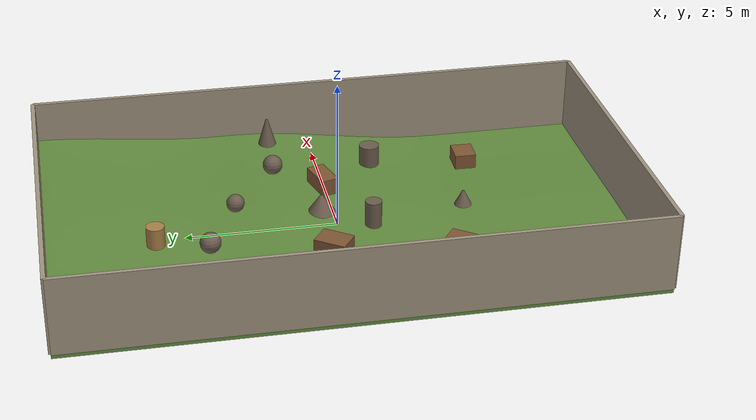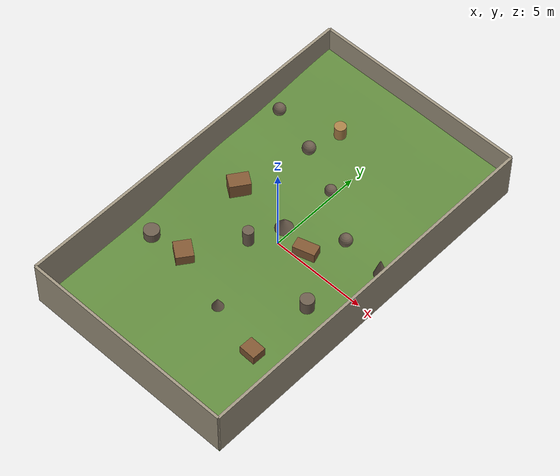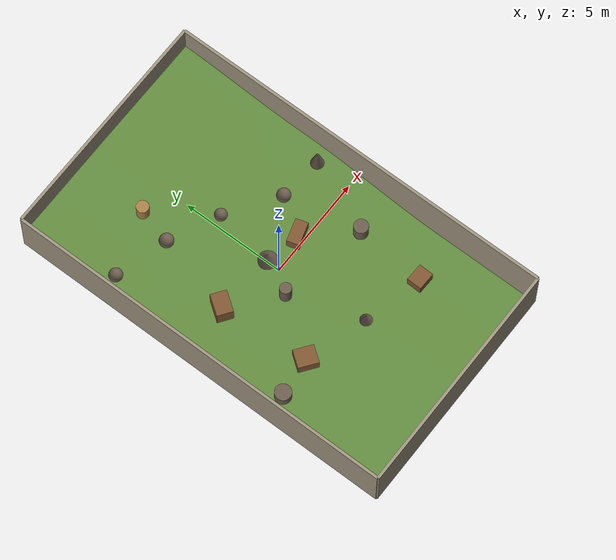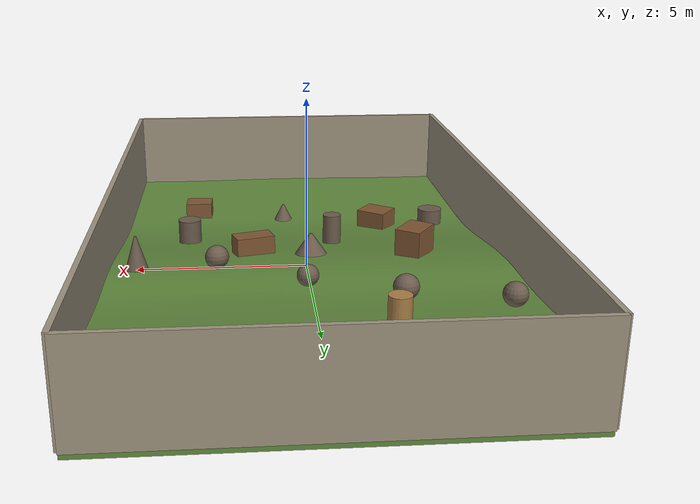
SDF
<?xml version='1.0' encoding='utf-8'?>
<sdf version="1.7">
  <world name="terrain_5">
    <gravity>0 0 -9.8</gravity>
    <plugin name="gazebo_ros_state" filename="libgazebo_ros_state.so">
      <ros>
        <namespace>/gazebo</namespace>
      </ros>
    </plugin>
    <physics name="ode_physics" type="ode">
      <max_step_size>0.001</max_step_size>
      <real_time_factor>1</real_time_factor>
      <real_time_update_rate>1000</real_time_update_rate>
      <ode>
        <solver>
          <type>quick</type>
          <iters>150</iters>
          <sor>1.3</sor>
        </solver>
        <constraints>
          <cfm>0</cfm>
          <erp>0.2</erp>
          <contact_max_correcting_vel>0.2</contact_max_correcting_vel>
          <contact_surface_layer>0.001</contact_surface_layer>
        </constraints>
      </ode>
    </physics>
    <light name="sun" type="directional">
      <pose>0 0 42 0 0 0</pose>
      <diffuse>0.92 0.91 0.88 1</diffuse>
      <specular>0.18 0.18 0.16 1</specular>
      <direction>-0.35 -0.28 -0.9</direction>
      <cast_shadows>true</cast_shadows>
    </light>
    <light name="fill" type="point">
      <pose>0 0 6 0 0 0</pose>
      <diffuse>0.35 0.36 0.34 1</diffuse>
      <specular>0.02 0.02 0.02 1</specular>
      <cast_shadows>false</cast_shadows>
      <attenuation>
        <range>80</range>
        <constant>0.5</constant>
        <linear>0.02</linear>
      </attenuation>
    </light>
    <scene>
      <ambient>0.52 0.56 0.48 1</ambient>
      <background>0.58 0.76 0.92 1</background>
    </scene>
    <gui fullscreen="false">
      <camera name="user_camera">
        <pose>7.85909091 -17.1 16.15 0 0.65 2.2</pose>
        <view_controller>orbit</view_controller>
      </camera>
    </gui>
    <model name="terrain_5_structure">
      <static>true</static>
      <link name="structure">
        <collision name="ground_surface_collision">
          <pose>0 0 0 0 0 0</pose>
          <geometry>
            <mesh>
              <uri>3DModel/terrain/surfaces/terrain_5_ground_surface.stl</uri>
            </mesh>
          </geometry>
          <max_contacts>40</max_contacts>
          <surface>
            <friction>
              <ode>
                <mu>8</mu>
                <mu2>8</mu2>
              </ode>
            </friction>
            <contact>
              <ode>
                <kp>1e7</kp>
                <kd>1000</kd>
                <max_vel>0.1</max_vel>
                <min_depth>0.001</min_depth>
              </ode>
            </contact>
          </surface>
        </collision>
        <visual name="ground_surface_visual">
          <pose>0 0 0 0 0 0</pose>
          <geometry>
            <mesh>
              <uri>3DModel/terrain/surfaces/terrain_5_ground_surface.stl</uri>
            </mesh>
          </geometry>
          <material>
            <ambient>0.38 0.54 0.24 1</ambient>
            <diffuse>0.38 0.54 0.24 1</diffuse>
          </material>
        </visual>
        <collision name="rock_box_0_collision">
          <pose>-2.59090909 -3.45454545 0.320454055 0 0 -0.631996004</pose>
          <geometry>
            <box>
              <size>0.95 0.863636364 0.561363636</size>
            </box>
          </geometry>
          <max_contacts>40</max_contacts>
          <surface>
            <friction>
              <ode>
                <mu>2</mu>
                <mu2>2</mu2>
              </ode>
            </friction>
            <contact>
              <ode>
                <kp>1e7</kp>
                <kd>1000</kd>
                <max_vel>0.1</max_vel>
                <min_depth>0.001</min_depth>
              </ode>
            </contact>
          </surface>
        </collision>
        <visual name="rock_box_0_visual">
          <pose>-2.59090909 -3.45454545 0.320454055 0 0 -0.631996004</pose>
          <geometry>
            <box>
              <size>0.95 0.863636364 0.561363636</size>
            </box>
          </geometry>
          <material>
            <ambient>0.50 0.34 0.20 1</ambient>
            <diffuse>0.50 0.34 0.20 1</diffuse>
          </material>
        </visual>
        <collision name="rock_round_1_collision">
          <pose>2.59090909 1.72727273 0.999488146 0 0 0</pose>
          <geometry>
            <sphere>
              <radius>0.3281818181818182</radius>
            </sphere>
          </geometry>
          <max_contacts>40</max_contacts>
          <surface>
            <friction>
              <ode>
                <mu>2</mu>
                <mu2>2</mu2>
              </ode>
            </friction>
            <contact>
              <ode>
                <kp>1e7</kp>
                <kd>1000</kd>
                <max_vel>0.1</max_vel>
                <min_depth>0.001</min_depth>
              </ode>
            </contact>
          </surface>
        </collision>
        <visual name="rock_round_1_visual">
          <pose>2.59090909 1.72727273 0.999488146 0 0 0</pose>
          <geometry>
            <sphere>
              <radius>0.3281818181818182</radius>
            </sphere>
          </geometry>
          <material>
            <ambient>0.42 0.36 0.30 1</ambient>
            <diffuse>0.42 0.36 0.30 1</diffuse>
          </material>
        </visual>
        <collision name="stone_column_2_collision">
          <pose>-1.72727273 6.04545455 1.22765715 0 0 0</pose>
          <geometry>
            <cylinder>
              <radius>0.29363636363636364</radius>
              <length>0.6909090909090909</length>
            </cylinder>
          </geometry>
          <max_contacts>40</max_contacts>
          <surface>
            <friction>
              <ode>
                <mu>2</mu>
                <mu2>2</mu2>
              </ode>
            </friction>
            <contact>
              <ode>
                <kp>1e7</kp>
                <kd>1000</kd>
                <max_vel>0.1</max_vel>
                <min_depth>0.001</min_depth>
              </ode>
            </contact>
          </surface>
        </collision>
        <visual name="stone_column_2_visual">
          <pose>-1.72727273 6.04545455 1.22765715 0 0 0</pose>
          <geometry>
            <cylinder>
              <radius>0.29363636363636364</radius>
              <length>0.6909090909090909</length>
            </cylinder>
          </geometry>
          <material>
            <ambient>0.66 0.50 0.28 1</ambient>
            <diffuse>0.66 0.50 0.28 1</diffuse>
          </material>
        </visual>
        <collision name="boundary_0_collision">
          <pose>0 -9.5 1.20909091 0 0 0</pose>
          <geometry>
            <box>
              <size>11.2272727 0.138181818 2.59090909</size>
            </box>
          </geometry>
          <max_contacts>40</max_contacts>
          <surface>
            <friction>
              <ode>
                <mu>2</mu>
                <mu2>2</mu2>
              </ode>
            </friction>
            <contact>
              <ode>
                <kp>1e7</kp>
                <kd>1000</kd>
                <max_vel>0.1</max_vel>
                <min_depth>0.001</min_depth>
              </ode>
            </contact>
          </surface>
        </collision>
        <visual name="boundary_0_visual">
          <pose>0 -9.5 1.20909091 0 0 0</pose>
          <geometry>
            <box>
              <size>11.2272727 0.138181818 2.59090909</size>
            </box>
          </geometry>
          <material>
            <ambient>0.62 0.58 0.50 1</ambient>
            <diffuse>0.62 0.58 0.50 1</diffuse>
          </material>
        </visual>
        <collision name="boundary_1_collision">
          <pose>5.61363636 0 1.20909091 0 0 1.57079633</pose>
          <geometry>
            <box>
              <size>19 0.138181818 2.59090909</size>
            </box>
          </geometry>
          <max_contacts>40</max_contacts>
          <surface>
            <friction>
              <ode>
                <mu>2</mu>
                <mu2>2</mu2>
              </ode>
            </friction>
            <contact>
              <ode>
                <kp>1e7</kp>
                <kd>1000</kd>
                <max_vel>0.1</max_vel>
                <min_depth>0.001</min_depth>
              </ode>
            </contact>
          </surface>
        </collision>
        <visual name="boundary_1_visual">
          <pose>5.61363636 0 1.20909091 0 0 1.57079633</pose>
          <geometry>
            <box>
              <size>19 0.138181818 2.59090909</size>
            </box>
          </geometry>
          <material>
            <ambient>0.62 0.58 0.50 1</ambient>
            <diffuse>0.62 0.58 0.50 1</diffuse>
          </material>
        </visual>
        <collision name="boundary_2_collision">
          <pose>0 9.5 1.20909091 0 0 3.14159265</pose>
          <geometry>
            <box>
              <size>11.2272727 0.138181818 2.59090909</size>
            </box>
          </geometry>
          <max_contacts>40</max_contacts>
          <surface>
            <friction>
              <ode>
                <mu>2</mu>
                <mu2>2</mu2>
              </ode>
            </friction>
            <contact>
              <ode>
                <kp>1e7</kp>
                <kd>1000</kd>
                <max_vel>0.1</max_vel>
                <min_depth>0.001</min_depth>
              </ode>
            </contact>
          </surface>
        </collision>
        <visual name="boundary_2_visual">
          <pose>0 9.5 1.20909091 0 0 3.14159265</pose>
          <geometry>
            <box>
              <size>11.2272727 0.138181818 2.59090909</size>
            </box>
          </geometry>
          <material>
            <ambient>0.62 0.58 0.50 1</ambient>
            <diffuse>0.62 0.58 0.50 1</diffuse>
          </material>
        </visual>
        <collision name="boundary_3_collision">
          <pose>-5.61363636 0 1.20909091 0 0 -1.57079633</pose>
          <geometry>
            <box>
              <size>19 0.138181818 2.59090909</size>
            </box>
          </geometry>
          <max_contacts>40</max_contacts>
          <surface>
            <friction>
              <ode>
                <mu>2</mu>
                <mu2>2</mu2>
              </ode>
            </friction>
            <contact>
              <ode>
                <kp>1e7</kp>
                <kd>1000</kd>
                <max_vel>0.1</max_vel>
                <min_depth>0.001</min_depth>
              </ode>
            </contact>
          </surface>
        </collision>
        <visual name="boundary_3_visual">
          <pose>-5.61363636 0 1.20909091 0 0 -1.57079633</pose>
          <geometry>
            <box>
              <size>19 0.138181818 2.59090909</size>
            </box>
          </geometry>
          <material>
            <ambient>0.62 0.58 0.50 1</ambient>
            <diffuse>0.62 0.58 0.50 1</diffuse>
          </material>
        </visual>
        <collision name="irregular_prop_0_collision">
          <pose>3.31784742 -5.09100339 0.254894919 0 0 -0.0281153594</pose>
          <geometry>
            <box>
              <size>0.855450702 0.719508024 0.504131895</size>
            </box>
          </geometry>
          <max_contacts>40</max_contacts>
          <surface>
            <friction>
              <ode>
                <mu>2</mu>
                <mu2>2</mu2>
              </ode>
            </friction>
            <contact>
              <ode>
                <kp>1e7</kp>
                <kd>1000</kd>
                <max_vel>0.1</max_vel>
                <min_depth>0.001</min_depth>
              </ode>
            </contact>
          </surface>
        </collision>
        <visual name="irregular_prop_0_visual">
          <pose>3.31784742 -5.09100339 0.254894919 0 0 -0.0281153594</pose>
          <geometry>
            <box>
              <size>0.855450702 0.719508024 0.504131895</size>
            </box>
          </geometry>
          <material>
            <ambient>0.50 0.34 0.20 1</ambient>
            <diffuse>0.50 0.34 0.20 1</diffuse>
          </material>
        </visual>
        <collision name="irregular_prop_1_collision">
          <pose>-4.43932031 -3.65621903 0.26971204 0 0 -1.24544425</pose>
          <geometry>
            <cylinder>
              <radius>0.3866845132374268</radius>
              <length>0.502405011112344</length>
            </cylinder>
          </geometry>
          <max_contacts>40</max_contacts>
          <surface>
            <friction>
              <ode>
                <mu>2</mu>
                <mu2>2</mu2>
              </ode>
            </friction>
            <contact>
              <ode>
                <kp>1e7</kp>
                <kd>1000</kd>
                <max_vel>0.1</max_vel>
                <min_depth>0.001</min_depth>
              </ode>
            </contact>
          </surface>
        </collision>
        <visual name="irregular_prop_1_visual">
          <pose>-4.43932031 -3.65621903 0.26971204 0 0 -1.24544425</pose>
          <geometry>
            <cylinder>
              <radius>0.3866845132374268</radius>
              <length>0.502405011112344</length>
            </cylinder>
          </geometry>
          <material>
            <ambient>0.42 0.36 0.30 1</ambient>
            <diffuse>0.42 0.36 0.30 1</diffuse>
          </material>
        </visual>
        <collision name="irregular_prop_2_collision">
          <pose>-4.75307056 5.11751377 1.09333152 0 0 1.75404163</pose>
          <geometry>
            <sphere>
              <radius>0.3200271670287471</radius>
            </sphere>
          </geometry>
          <max_contacts>40</max_contacts>
          <surface>
            <friction>
              <ode>
                <mu>2</mu>
                <mu2>2</mu2>
              </ode>
            </friction>
            <contact>
              <ode>
                <kp>1e7</kp>
                <kd>1000</kd>
                <max_vel>0.1</max_vel>
                <min_depth>0.001</min_depth>
              </ode>
            </contact>
          </surface>
        </collision>
        <visual name="irregular_prop_2_visual">
          <pose>-4.75307056 5.11751377 1.09333152 0 0 1.75404163</pose>
          <geometry>
            <sphere>
              <radius>0.3200271670287471</radius>
            </sphere>
          </geometry>
          <material>
            <ambient>0.42 0.36 0.30 1</ambient>
            <diffuse>0.42 0.36 0.30 1</diffuse>
          </material>
        </visual>
        <collision name="irregular_prop_3_collision">
          <pose>0 0 0 0 0 0</pose>
          <geometry>
            <mesh>
              <uri>3DModel/terrain/surfaces/terrain_5_irregular_prop_3.stl</uri>
            </mesh>
          </geometry>
          <max_contacts>40</max_contacts>
          <surface>
            <friction>
              <ode>
                <mu>8</mu>
                <mu2>8</mu2>
              </ode>
            </friction>
            <contact>
              <ode>
                <kp>1e7</kp>
                <kd>1000</kd>
                <max_vel>0.1</max_vel>
                <min_depth>0.001</min_depth>
              </ode>
            </contact>
          </surface>
        </collision>
        <visual name="irregular_prop_3_visual">
          <pose>0 0 0 0 0 0</pose>
          <geometry>
            <mesh>
              <uri>3DModel/terrain/surfaces/terrain_5_irregular_prop_3.stl</uri>
            </mesh>
          </geometry>
          <material>
            <ambient>0.42 0.36 0.30 1</ambient>
            <diffuse>0.42 0.36 0.30 1</diffuse>
          </material>
        </visual>
        <collision name="irregular_prop_4_collision">
          <pose>-3.08827845 0.674826788 0.97080944 0 0 0.957080702</pose>
          <geometry>
            <box>
              <size>1.04078612 0.754331411 0.810233455</size>
            </box>
          </geometry>
          <max_contacts>40</max_contacts>
          <surface>
            <friction>
              <ode>
                <mu>2</mu>
                <mu2>2</mu2>
              </ode>
            </friction>
            <contact>
              <ode>
                <kp>1e7</kp>
                <kd>1000</kd>
                <max_vel>0.1</max_vel>
                <min_depth>0.001</min_depth>
              </ode>
            </contact>
          </surface>
        </collision>
        <visual name="irregular_prop_4_visual">
          <pose>-3.08827845 0.674826788 0.97080944 0 0 0.957080702</pose>
          <geometry>
            <box>
              <size>1.04078612 0.754331411 0.810233455</size>
            </box>
          </geometry>
          <material>
            <ambient>0.50 0.34 0.20 1</ambient>
            <diffuse>0.50 0.34 0.20 1</diffuse>
          </material>
        </visual>
        <collision name="irregular_prop_5_collision">
          <pose>-0.854684285 -1.02676866 0.796647835 0 0 2.1626254</pose>
          <geometry>
            <cylinder>
              <radius>0.2707444216075025</radius>
              <length>0.8894486341126021</length>
            </cylinder>
          </geometry>
          <max_contacts>40</max_contacts>
          <surface>
            <friction>
              <ode>
                <mu>2</mu>
                <mu2>2</mu2>
              </ode>
            </friction>
            <contact>
              <ode>
                <kp>1e7</kp>
                <kd>1000</kd>
                <max_vel>0.1</max_vel>
                <min_depth>0.001</min_depth>
              </ode>
            </contact>
          </surface>
        </collision>
        <visual name="irregular_prop_5_visual">
          <pose>-0.854684285 -1.02676866 0.796647835 0 0 2.1626254</pose>
          <geometry>
            <cylinder>
              <radius>0.2707444216075025</radius>
              <length>0.8894486341126021</length>
            </cylinder>
          </geometry>
          <material>
            <ambient>0.42 0.36 0.30 1</ambient>
            <diffuse>0.42 0.36 0.30 1</diffuse>
          </material>
        </visual>
        <collision name="irregular_prop_6_collision">
          <pose>0.209128949 3.30444445 1.01863765 0 0 2.27568676</pose>
          <geometry>
            <sphere>
              <radius>0.29340768088374397</radius>
            </sphere>
          </geometry>
          <max_contacts>40</max_contacts>
          <surface>
            <friction>
              <ode>
                <mu>2</mu>
                <mu2>2</mu2>
              </ode>
            </friction>
            <contact>
              <ode>
                <kp>1e7</kp>
                <kd>1000</kd>
                <max_vel>0.1</max_vel>
                <min_depth>0.001</min_depth>
              </ode>
            </contact>
          </surface>
        </collision>
        <visual name="irregular_prop_6_visual">
          <pose>0.209128949 3.30444445 1.01863765 0 0 2.27568676</pose>
          <geometry>
            <sphere>
              <radius>0.29340768088374397</radius>
            </sphere>
          </geometry>
          <material>
            <ambient>0.42 0.36 0.30 1</ambient>
            <diffuse>0.42 0.36 0.30 1</diffuse>
          </material>
        </visual>
        <collision name="irregular_prop_7_collision">
          <pose>0 0 0 0 0 0</pose>
          <geometry>
            <mesh>
              <uri>3DModel/terrain/surfaces/terrain_5_irregular_prop_7.stl</uri>
            </mesh>
          </geometry>
          <max_contacts>40</max_contacts>
          <surface>
            <friction>
              <ode>
                <mu>8</mu>
                <mu2>8</mu2>
              </ode>
            </friction>
            <contact>
              <ode>
                <kp>1e7</kp>
                <kd>1000</kd>
                <max_vel>0.1</max_vel>
                <min_depth>0.001</min_depth>
              </ode>
            </contact>
          </surface>
        </collision>
        <visual name="irregular_prop_7_visual">
          <pose>0 0 0 0 0 0</pose>
          <geometry>
            <mesh>
              <uri>3DModel/terrain/surfaces/terrain_5_irregular_prop_7.stl</uri>
            </mesh>
          </geometry>
          <material>
            <ambient>0.42 0.36 0.30 1</ambient>
            <diffuse>0.42 0.36 0.30 1</diffuse>
          </material>
        </visual>
        <collision name="irregular_prop_8_collision">
          <pose>1.56990411 0.201517358 0.800115635 0 0 -2.85089803</pose>
          <geometry>
            <box>
              <size>1.12453357 0.600436119 0.553221796</size>
            </box>
          </geometry>
          <max_contacts>40</max_contacts>
          <surface>
            <friction>
              <ode>
                <mu>2</mu>
                <mu2>2</mu2>
              </ode>
            </friction>
            <contact>
              <ode>
                <kp>1e7</kp>
                <kd>1000</kd>
                <max_vel>0.1</max_vel>
                <min_depth>0.001</min_depth>
              </ode>
            </contact>
          </surface>
        </collision>
        <visual name="irregular_prop_8_visual">
          <pose>1.56990411 0.201517358 0.800115635 0 0 -2.85089803</pose>
          <geometry>
            <box>
              <size>1.12453357 0.600436119 0.553221796</size>
            </box>
          </geometry>
          <material>
            <ambient>0.50 0.34 0.20 1</ambient>
            <diffuse>0.50 0.34 0.20 1</diffuse>
          </material>
        </visual>
        <collision name="irregular_prop_9_collision">
          <pose>3.49230787 -1.77262911 0.578534949 0 0 0.26003611</pose>
          <geometry>
            <cylinder>
              <radius>0.3405038640853353</radius>
              <length>0.7291891188141353</length>
            </cylinder>
          </geometry>
          <max_contacts>40</max_contacts>
          <surface>
            <friction>
              <ode>
                <mu>2</mu>
                <mu2>2</mu2>
              </ode>
            </friction>
            <contact>
              <ode>
                <kp>1e7</kp>
                <kd>1000</kd>
                <max_vel>0.1</max_vel>
                <min_depth>0.001</min_depth>
              </ode>
            </contact>
          </surface>
        </collision>
        <visual name="irregular_prop_9_visual">
          <pose>3.49230787 -1.77262911 0.578534949 0 0 0.26003611</pose>
          <geometry>
            <cylinder>
              <radius>0.3405038640853353</radius>
              <length>0.7291891188141353</length>
            </cylinder>
          </geometry>
          <material>
            <ambient>0.42 0.36 0.30 1</ambient>
            <diffuse>0.42 0.36 0.30 1</diffuse>
          </material>
        </visual>
        <collision name="irregular_prop_10_collision">
          <pose>-2.17785946 4.39533775 1.07071471 0 0 1.35541762</pose>
          <geometry>
            <sphere>
              <radius>0.33631733524237695</radius>
            </sphere>
          </geometry>
          <max_contacts>40</max_contacts>
          <surface>
            <friction>
              <ode>
                <mu>2</mu>
                <mu2>2</mu2>
              </ode>
            </friction>
            <contact>
              <ode>
                <kp>1e7</kp>
                <kd>1000</kd>
                <max_vel>0.1</max_vel>
                <min_depth>0.001</min_depth>
              </ode>
            </contact>
          </surface>
        </collision>
        <visual name="irregular_prop_10_visual">
          <pose>-2.17785946 4.39533775 1.07071471 0 0 1.35541762</pose>
          <geometry>
            <sphere>
              <radius>0.33631733524237695</radius>
            </sphere>
          </geometry>
          <material>
            <ambient>0.42 0.36 0.30 1</ambient>
            <diffuse>0.42 0.36 0.30 1</diffuse>
          </material>
        </visual>
        <collision name="irregular_prop_11_collision">
          <pose>0 0 0 0 0 0</pose>
          <geometry>
            <mesh>
              <uri>3DModel/terrain/surfaces/terrain_5_irregular_prop_11.stl</uri>
            </mesh>
          </geometry>
          <max_contacts>40</max_contacts>
          <surface>
            <friction>
              <ode>
                <mu>8</mu>
                <mu2>8</mu2>
              </ode>
            </friction>
            <contact>
              <ode>
                <kp>1e7</kp>
                <kd>1000</kd>
                <max_vel>0.1</max_vel>
                <min_depth>0.001</min_depth>
              </ode>
            </contact>
          </surface>
        </collision>
        <visual name="irregular_prop_11_visual">
          <pose>0 0 0 0 0 0</pose>
          <geometry>
            <mesh>
              <uri>3DModel/terrain/surfaces/terrain_5_irregular_prop_11.stl</uri>
            </mesh>
          </geometry>
          <material>
            <ambient>0.42 0.36 0.30 1</ambient>
            <diffuse>0.42 0.36 0.30 1</diffuse>
          </material>
        </visual>
      </link>
    </model>
  </world>
</sdf>
